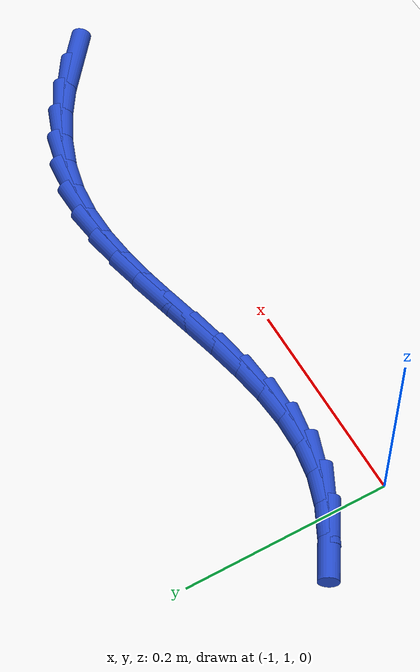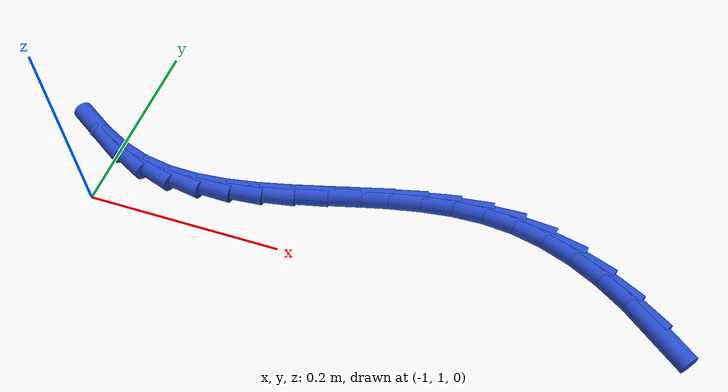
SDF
<sdf version="1.6">
 <world name="default">
  <model name="ground_plane">
   <static>1</static>
   <link name="link">
    <collision name="collision">
     <geometry><plane><normal>0 0 1</normal><size>100 100</size></plane></geometry>
     <surface><friction><ode><mu>100</mu><mu2>50</mu2></ode></friction></surface>
    </collision>
    <visual name="visual">
     <cast_shadows>0</cast_shadows>
     <geometry><plane><normal>0 0 1</normal><size>100 100</size></plane></geometry>
     <material>
      <script><uri>file://media/materials/scripts/gazebo.material</uri><name>Gazebo/WhiteGlow</name></script>
     </material>
    </visual>
   </link>
  </model>
  <model name="line">
   <link name="link_36">
    <pose>-0.4446627622897317 1.0183362941387188 0.01 0 1.57 -0.6881549010183486</pose>
    <collision name="collision">
     <geometry><cylinder><radius>0.01</radius><length>0.08</length></cylinder></geometry>
    </collision>
    <visual name="visual">
     <material>
      <script><name>Gazebo/Blue</name><uri>file://media/materials/scripts/gazebo.material</uri></script>
     </material>
     <geometry><cylinder><radius>0.01</radius><length>0.08</length></cylinder></geometry>
    </visual>
   </link>
   <link name="link_37">
    <pose>-0.47038809817439386 1.0394886653850695 0.01 0 1.57 -0.5866466428776934</pose>
    <collision name="collision">
     <geometry><cylinder><radius>0.01</radius><length>0.08</length></cylinder></geometry>
    </collision>
    <visual name="visual">
     <material>
      <script><name>Gazebo/Blue</name><uri>file://media/materials/scripts/gazebo.material</uri></script>
     </material>
     <geometry><cylinder><radius>0.01</radius><length>0.08</length></cylinder></geometry>
    </visual>
   </link>
   <link name="link_38">
    <pose>-0.4978211414249404 1.0577236787508715 0.01 0 1.57 -0.47791888875416527</pose>
    <collision name="collision">
     <geometry><cylinder><radius>0.01</radius><length>0.08</length></cylinder></geometry>
    </collision>
    <visual name="visual">
     <material>
      <script><name>Gazebo/Blue</name><uri>file://media/materials/scripts/gazebo.material</uri></script>
     </material>
     <geometry><cylinder><radius>0.01</radius><length>0.08</length></cylinder></geometry>
    </visual>
   </link>
   <link name="link_39">
    <pose>-0.5266476465781543 1.0726549014402307 0.01 0 1.57 -0.3595430257160499</pose>
    <collision name="collision">
     <geometry><cylinder><radius>0.01</radius><length>0.08</length></cylinder></geometry>
    </collision>
    <visual name="visual">
     <material>
      <script><name>Gazebo/Blue</name><uri>file://media/materials/scripts/gazebo.material</uri></script>
     </material>
     <geometry><cylinder><radius>0.01</radius><length>0.08</length></cylinder></geometry>
    </visual>
   </link>
   <link name="link_40">
    <pose>-0.5565533681708177 1.083895900657252 0.01 0 1.57 -0.2294745875804386</pose>
    <collision name="collision">
     <geometry><cylinder><radius>0.01</radius><length>0.08</length></cylinder></geometry>
    </collision>
    <visual name="visual">
     <material>
      <script><name>Gazebo/Blue</name><uri>file://media/materials/scripts/gazebo.material</uri></script>
     </material>
     <geometry><cylinder><radius>0.01</radius><length>0.08</length></cylinder></geometry>
    </visual>
   </link>
   <link name="link_41">
    <pose>-0.587224060739713 1.0910602436060408 0.01 0 1.57 -0.08997493502434484</pose>
    <collision name="collision">
     <geometry><cylinder><radius>0.01</radius><length>0.08</length></cylinder></geometry>
    </collision>
    <visual name="visual">
     <material>
      <script><name>Gazebo/Blue</name><uri>file://media/materials/scripts/gazebo.material</uri></script>
     </material>
     <geometry><cylinder><radius>0.01</radius><length>0.08</length></cylinder></geometry>
    </visual>
   </link>
   <link name="link_42">
    <pose>-0.6183667220842624 1.0938698884483016 0.01 0 1.57 0.03368978004114141</pose>
    <collision name="collision">
     <geometry><cylinder><radius>0.01</radius><length>0.08</length></cylinder></geometry>
    </collision>
    <visual name="visual">
     <material>
      <script><name>Gazebo/Blue</name><uri>file://media/materials/scripts/gazebo.material</uri></script>
     </material>
     <geometry><cylinder><radius>0.01</radius><length>0.08</length></cylinder></geometry>
    </visual>
   </link>
   <link name="link_43">
    <pose>-0.6498377788011244 1.092809234158156 0.01 0 1.57 0.12914417288525487</pose>
    <collision name="collision">
     <geometry><cylinder><radius>0.01</radius><length>0.08</length></cylinder></geometry>
    </collision>
    <visual name="visual">
     <material>
      <script><name>Gazebo/Blue</name><uri>file://media/materials/scripts/gazebo.material</uri></script>
     </material>
     <geometry><cylinder><radius>0.01</radius><length>0.08</length></cylinder></geometry>
    </visual>
   </link>
   <link name="link_44">
    <pose>-0.6815577795448817 1.0886898540887027 0.01 0 1.57 0.19701346721089535</pose>
    <collision name="collision">
     <geometry><cylinder><radius>0.01</radius><length>0.08</length></cylinder></geometry>
    </collision>
    <visual name="visual">
     <material>
      <script><name>Gazebo/Blue</name><uri>file://media/materials/scripts/gazebo.material</uri></script>
     </material>
     <geometry><cylinder><radius>0.01</radius><length>0.08</length></cylinder></geometry>
    </visual>
   </link>
   <link name="link_45">
    <pose>-0.7134475190999371 1.082324577438122 0.01 0 1.57 0.23918075960787294</pose>
    <collision name="collision">
     <geometry><cylinder><radius>0.01</radius><length>0.08</length></cylinder></geometry>
    </collision>
    <visual name="visual">
     <material>
      <script><name>Gazebo/Blue</name><uri>file://media/materials/scripts/gazebo.material</uri></script>
     </material>
     <geometry><cylinder><radius>0.01</radius><length>0.08</length></cylinder></geometry>
    </visual>
   </link>
   <link name="link_46">
    <pose>-0.7454277922506934 1.0745262334045957 0.01 0 1.57 0.25731610571881175</pose>
    <collision name="collision">
     <geometry><cylinder><radius>0.01</radius><length>0.08</length></cylinder></geometry>
    </collision>
    <visual name="visual">
     <material>
      <script><name>Gazebo/Blue</name><uri>file://media/materials/scripts/gazebo.material</uri></script>
     </material>
     <geometry><cylinder><radius>0.01</radius><length>0.08</length></cylinder></geometry>
    </visual>
   </link>
   <link name="link_47">
    <pose>-0.777419393781553 1.0661076511863037 0.01 0 1.57 0.2521903811376211</pose>
    <collision name="collision">
     <geometry><cylinder><radius>0.01</radius><length>0.08</length></cylinder></geometry>
    </collision>
    <visual name="visual">
     <material>
      <script><name>Gazebo/Blue</name><uri>file://media/materials/scripts/gazebo.material</uri></script>
     </material>
     <geometry><cylinder><radius>0.01</radius><length>0.08</length></cylinder></geometry>
    </visual>
   </link>
   <link name="link_48">
    <pose>-0.8093431184769193 1.057881659981427 0.01 0 1.57 0.22343490931786864</pose>
    <collision name="collision">
     <geometry><cylinder><radius>0.01</radius><length>0.08</length></cylinder></geometry>
    </collision>
    <visual name="visual">
     <material>
      <script><name>Gazebo/Blue</name><uri>file://media/materials/scripts/gazebo.material</uri></script>
     </material>
     <geometry><cylinder><radius>0.01</radius><length>0.08</length></cylinder></geometry>
    </visual>
   </link>
   <link name="link_49">
    <pose>-0.8411197611211949 1.050661088988147 0.01 0 1.57 0.16958395582606758</pose>
    <collision name="collision">
     <geometry><cylinder><radius>0.01</radius><length>0.08</length></cylinder></geometry>
    </collision>
    <visual name="visual">
     <material>
      <script><name>Gazebo/Blue</name><uri>file://media/materials/scripts/gazebo.material</uri></script>
     </material>
     <geometry><cylinder><radius>0.01</radius><length>0.08</length></cylinder></geometry>
    </visual>
   </link>
   <link name="link_50">
    <pose>-0.8726701164987825 1.0452587674046439 0.01 0 1.57 0.08846287012202927</pose>
    <collision name="collision">
     <geometry><cylinder><radius>0.01</radius><length>0.08</length></cylinder></geometry>
    </collision>
    <visual name="visual">
     <material>
      <script><name>Gazebo/Blue</name><uri>file://media/materials/scripts/gazebo.material</uri></script>
     </material>
     <geometry><cylinder><radius>0.01</radius><length>0.08</length></cylinder></geometry>
    </visual>
   </link>
   <link name="link_51">
    <pose>-0.9039149793940853 1.0424875244290988 0.01 0 1.57 -0.021793737170809055</pose>
    <collision name="collision">
     <geometry><cylinder><radius>0.01</radius><length>0.08</length></cylinder></geometry>
    </collision>
    <visual name="visual">
     <material>
      <script><name>Gazebo/Blue</name><uri>file://media/materials/scripts/gazebo.material</uri></script>
     </material>
     <geometry><cylinder><radius>0.01</radius><length>0.08</length></cylinder></geometry>
    </visual>
   </link>
   <link name="link_52">
    <pose>-0.9347751445915056 1.0431601892596924 0.01 0 1.57 -0.16077165922590647</pose>
    <collision name="collision">
     <geometry><cylinder><radius>0.01</radius><length>0.08</length></cylinder></geometry>
    </collision>
    <visual name="visual">
     <material>
      <script><name>Gazebo/Blue</name><uri>file://media/materials/scripts/gazebo.material</uri></script>
     </material>
     <geometry><cylinder><radius>0.01</radius><length>0.08</length></cylinder></geometry>
    </visual>
   </link>
   <link name="link_53">
    <pose>-0.9651714068754462 1.0480895910946055 0.01 0 1.57 -0.3220942035098514</pose>
    <collision name="collision">
     <geometry><cylinder><radius>0.01</radius><length>0.08</length></cylinder></geometry>
    </collision>
    <visual name="visual">
     <material>
      <script><name>Gazebo/Blue</name><uri>file://media/materials/scripts/gazebo.material</uri></script>
     </material>
     <geometry><cylinder><radius>0.01</radius><length>0.08</length></cylinder></geometry>
    </visual>
   </link>
   <link name="link_54">
    <pose>-0.9950271691410228 1.0580529130520584 0.01 0 1.57 -0.46623125615261896</pose>
    <collision name="collision">
     <geometry><cylinder><radius>0.01</radius><length>0.08</length></cylinder></geometry>
    </collision>
    <visual name="visual">
     <material>
      <script><name>Gazebo/Blue</name><uri>file://media/materials/scripts/gazebo.material</uri></script>
     </material>
     <geometry><cylinder><radius>0.01</radius><length>0.08</length></cylinder></geometry>
    </visual>
   </link>
   <link name="link_55">
    <pose>-1.0243406751589712 1.0728044584223764 0.01 0 1.57 -0.5613428617239103</pose>
    <collision name="collision">
     <geometry><cylinder><radius>0.01</radius><length>0.08</length></cylinder></geometry>
    </collision>
    <visual name="visual">
     <material>
      <script><name>Gazebo/Blue</name><uri>file://media/materials/scripts/gazebo.material</uri></script>
     </material>
     <geometry><cylinder><radius>0.01</radius><length>0.08</length></cylinder></geometry>
    </visual>
   </link>
  </model>
 </world>
</sdf>
